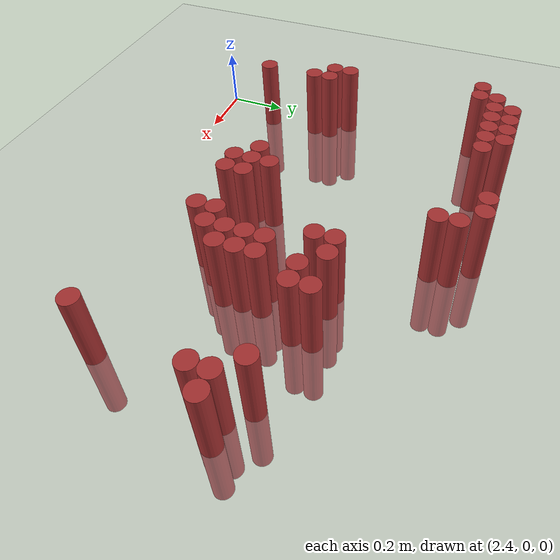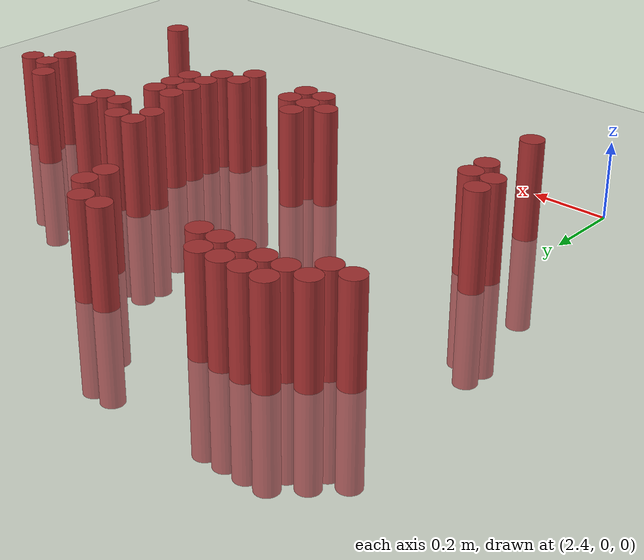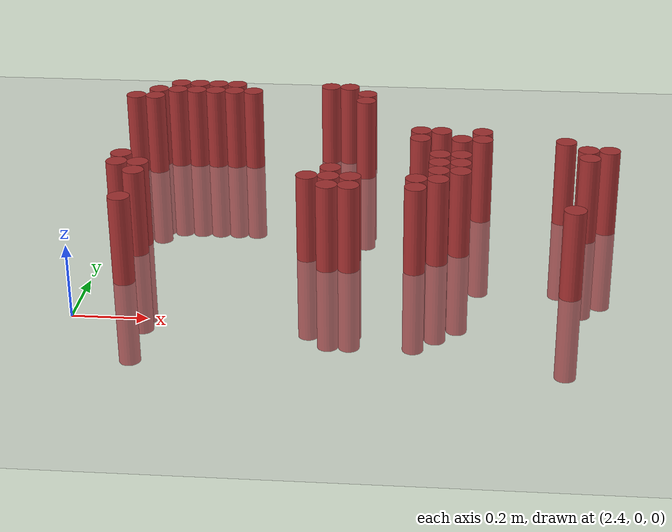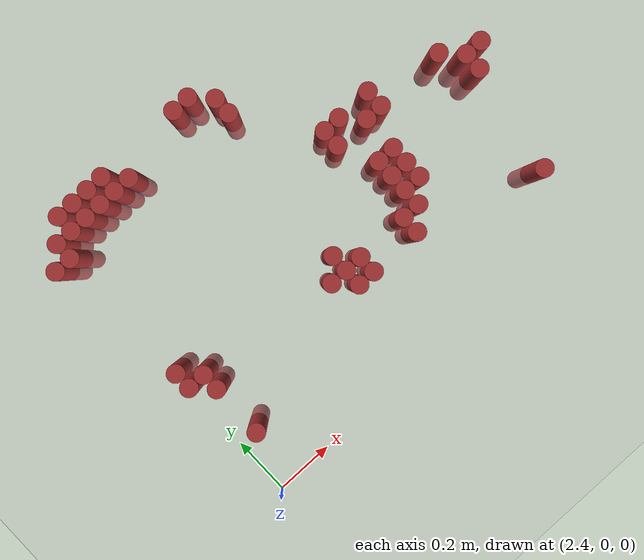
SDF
<sdf version="1.6">
 <world name="default">
  <model name="ground_plane">
   <static>1</static>
   <link name="link">
    <collision name="collision">
     <geometry><plane><normal>0 0 1</normal><size>100 100</size></plane></geometry>
     <surface><friction><ode><mu>100</mu><mu2>50</mu2></ode></friction></surface>
    </collision>
    <visual name="visual">
     <cast_shadows>0</cast_shadows>
     <geometry><plane><normal>0 0 1</normal><size>100 100</size></plane></geometry>
     <material>
      <script><uri>file://media/materials/scripts/gazebo.material</uri><name>Gazebo/Grey</name></script>
     </material>
    </visual>
   </link>
  </model>
  <model name="unit_cylinder_160">
   <static>1</static>
   <pose>2.490000 1.110000 0.000000 0.000000 0.000000 0.000000</pose>
   <link name="link">
    <inertial>
     <mass>1</mass>
     <inertia><ixx>0.145833</ixx><ixy>0</ixy><ixz>0</ixz><iyy>0.145833</iyy><iyz>0</iyz><izz>0.125</izz></inertia>
    </inertial>
    <collision name="collision">
     <geometry><cylinder><radius>0.030000</radius><length>0.5</length></cylinder></geometry>
    </collision>
    <visual name="visual">
     <geometry><cylinder><radius>0.030000</radius><length>0.5</length></cylinder></geometry>
     <material>
      <ambient>0.648000 0.192000 0.192000 1</ambient>
      <diffuse>0.648000 0.192000 0.192000 1</diffuse>
     </material>
     <material>
      <script><name>Gazebo/Grey</name><uri>file://media/materials/scripts/gazebo.material</uri></script>
     </material>
    </visual>
   </link>
  </model>
  <model name="unit_cylinder_161">
   <static>1</static>
   <pose>2.550000 1.110000 0.000000 0.000000 0.000000 0.000000</pose>
   <link name="link">
    <inertial>
     <mass>1</mass>
     <inertia><ixx>0.145833</ixx><ixy>0</ixy><ixz>0</ixz><iyy>0.145833</iyy><iyz>0</iyz><izz>0.125</izz></inertia>
    </inertial>
    <collision name="collision">
     <geometry><cylinder><radius>0.030000</radius><length>0.5</length></cylinder></geometry>
    </collision>
    <visual name="visual">
     <geometry><cylinder><radius>0.030000</radius><length>0.5</length></cylinder></geometry>
     <material>
      <ambient>0.648000 0.192000 0.192000 1</ambient>
      <diffuse>0.648000 0.192000 0.192000 1</diffuse>
     </material>
     <material>
      <script><name>Gazebo/Grey</name><uri>file://media/materials/scripts/gazebo.material</uri></script>
     </material>
    </visual>
   </link>
  </model>
  <model name="unit_cylinder_162">
   <static>1</static>
   <pose>2.610000 1.110000 0.000000 0.000000 0.000000 0.000000</pose>
   <link name="link">
    <inertial>
     <mass>1</mass>
     <inertia><ixx>0.145833</ixx><ixy>0</ixy><ixz>0</ixz><iyy>0.145833</iyy><iyz>0</iyz><izz>0.125</izz></inertia>
    </inertial>
    <collision name="collision">
     <geometry><cylinder><radius>0.030000</radius><length>0.5</length></cylinder></geometry>
    </collision>
    <visual name="visual">
     <geometry><cylinder><radius>0.030000</radius><length>0.5</length></cylinder></geometry>
     <material>
      <ambient>0.648000 0.192000 0.192000 1</ambient>
      <diffuse>0.648000 0.192000 0.192000 1</diffuse>
     </material>
     <material>
      <script><name>Gazebo/Grey</name><uri>file://media/materials/scripts/gazebo.material</uri></script>
     </material>
    </visual>
   </link>
  </model>
  <model name="unit_cylinder_163">
   <static>1</static>
   <pose>2.670000 1.110000 0.000000 0.000000 0.000000 0.000000</pose>
   <link name="link">
    <inertial>
     <mass>1</mass>
     <inertia><ixx>0.145833</ixx><ixy>0</ixy><ixz>0</ixz><iyy>0.145833</iyy><iyz>0</iyz><izz>0.125</izz></inertia>
    </inertial>
    <collision name="collision">
     <geometry><cylinder><radius>0.030000</radius><length>0.5</length></cylinder></geometry>
    </collision>
    <visual name="visual">
     <geometry><cylinder><radius>0.030000</radius><length>0.5</length></cylinder></geometry>
     <material>
      <ambient>0.648000 0.192000 0.192000 1</ambient>
      <diffuse>0.648000 0.192000 0.192000 1</diffuse>
     </material>
     <material>
      <script><name>Gazebo/Grey</name><uri>file://media/materials/scripts/gazebo.material</uri></script>
     </material>
    </visual>
   </link>
  </model>
  <model name="unit_cylinder_164">
   <static>1</static>
   <pose>2.970000 1.110000 0.000000 0.000000 0.000000 0.000000</pose>
   <link name="link">
    <inertial>
     <mass>1</mass>
     <inertia><ixx>0.145833</ixx><ixy>0</ixy><ixz>0</ixz><iyy>0.145833</iyy><iyz>0</iyz><izz>0.125</izz></inertia>
    </inertial>
    <collision name="collision">
     <geometry><cylinder><radius>0.030000</radius><length>0.5</length></cylinder></geometry>
    </collision>
    <visual name="visual">
     <geometry><cylinder><radius>0.030000</radius><length>0.5</length></cylinder></geometry>
     <material>
      <ambient>0.648000 0.192000 0.192000 1</ambient>
      <diffuse>0.648000 0.192000 0.192000 1</diffuse>
     </material>
     <material>
      <script><name>Gazebo/Grey</name><uri>file://media/materials/scripts/gazebo.material</uri></script>
     </material>
    </visual>
   </link>
  </model>
  <model name="unit_cylinder_165">
   <static>1</static>
   <pose>3.030000 1.110000 0.000000 0.000000 0.000000 0.000000</pose>
   <link name="link">
    <inertial>
     <mass>1</mass>
     <inertia><ixx>0.145833</ixx><ixy>0</ixy><ixz>0</ixz><iyy>0.145833</iyy><iyz>0</iyz><izz>0.125</izz></inertia>
    </inertial>
    <collision name="collision">
     <geometry><cylinder><radius>0.030000</radius><length>0.5</length></cylinder></geometry>
    </collision>
    <visual name="visual">
     <geometry><cylinder><radius>0.030000</radius><length>0.5</length></cylinder></geometry>
     <material>
      <ambient>0.648000 0.192000 0.192000 1</ambient>
      <diffuse>0.648000 0.192000 0.192000 1</diffuse>
     </material>
     <material>
      <script><name>Gazebo/Grey</name><uri>file://media/materials/scripts/gazebo.material</uri></script>
     </material>
    </visual>
   </link>
  </model>
  <model name="unit_cylinder_171">
   <static>1</static>
   <pose>2.430000 1.050000 0.000000 0.000000 0.000000 0.000000</pose>
   <link name="link">
    <inertial>
     <mass>1</mass>
     <inertia><ixx>0.145833</ixx><ixy>0</ixy><ixz>0</ixz><iyy>0.145833</iyy><iyz>0</iyz><izz>0.125</izz></inertia>
    </inertial>
    <collision name="collision">
     <geometry><cylinder><radius>0.030000</radius><length>0.5</length></cylinder></geometry>
    </collision>
    <visual name="visual">
     <geometry><cylinder><radius>0.030000</radius><length>0.5</length></cylinder></geometry>
     <material>
      <ambient>0.648000 0.192000 0.192000 1</ambient>
      <diffuse>0.648000 0.192000 0.192000 1</diffuse>
     </material>
     <material>
      <script><name>Gazebo/Grey</name><uri>file://media/materials/scripts/gazebo.material</uri></script>
     </material>
    </visual>
   </link>
  </model>
  <model name="unit_cylinder_172">
   <static>1</static>
   <pose>2.490000 1.050000 0.000000 0.000000 0.000000 0.000000</pose>
   <link name="link">
    <inertial>
     <mass>1</mass>
     <inertia><ixx>0.145833</ixx><ixy>0</ixy><ixz>0</ixz><iyy>0.145833</iyy><iyz>0</iyz><izz>0.125</izz></inertia>
    </inertial>
    <collision name="collision">
     <geometry><cylinder><radius>0.030000</radius><length>0.5</length></cylinder></geometry>
    </collision>
    <visual name="visual">
     <geometry><cylinder><radius>0.030000</radius><length>0.5</length></cylinder></geometry>
     <material>
      <ambient>0.648000 0.192000 0.192000 1</ambient>
      <diffuse>0.648000 0.192000 0.192000 1</diffuse>
     </material>
     <material>
      <script><name>Gazebo/Grey</name><uri>file://media/materials/scripts/gazebo.material</uri></script>
     </material>
    </visual>
   </link>
  </model>
  <model name="unit_cylinder_173">
   <static>1</static>
   <pose>2.550000 1.050000 0.000000 0.000000 0.000000 0.000000</pose>
   <link name="link">
    <inertial>
     <mass>1</mass>
     <inertia><ixx>0.145833</ixx><ixy>0</ixy><ixz>0</ixz><iyy>0.145833</iyy><iyz>0</iyz><izz>0.125</izz></inertia>
    </inertial>
    <collision name="collision">
     <geometry><cylinder><radius>0.030000</radius><length>0.5</length></cylinder></geometry>
    </collision>
    <visual name="visual">
     <geometry><cylinder><radius>0.030000</radius><length>0.5</length></cylinder></geometry>
     <material>
      <ambient>0.648000 0.192000 0.192000 1</ambient>
      <diffuse>0.648000 0.192000 0.192000 1</diffuse>
     </material>
     <material>
      <script><name>Gazebo/Grey</name><uri>file://media/materials/scripts/gazebo.material</uri></script>
     </material>
    </visual>
   </link>
  </model>
  <model name="unit_cylinder_174">
   <static>1</static>
   <pose>2.610000 1.050000 0.000000 0.000000 0.000000 0.000000</pose>
   <link name="link">
    <inertial>
     <mass>1</mass>
     <inertia><ixx>0.145833</ixx><ixy>0</ixy><ixz>0</ixz><iyy>0.145833</iyy><iyz>0</iyz><izz>0.125</izz></inertia>
    </inertial>
    <collision name="collision">
     <geometry><cylinder><radius>0.030000</radius><length>0.5</length></cylinder></geometry>
    </collision>
    <visual name="visual">
     <geometry><cylinder><radius>0.030000</radius><length>0.5</length></cylinder></geometry>
     <material>
      <ambient>0.648000 0.192000 0.192000 1</ambient>
      <diffuse>0.648000 0.192000 0.192000 1</diffuse>
     </material>
     <material>
      <script><name>Gazebo/Grey</name><uri>file://media/materials/scripts/gazebo.material</uri></script>
     </material>
    </visual>
   </link>
  </model>
  <model name="unit_cylinder_175">
   <static>1</static>
   <pose>2.670000 1.050000 0.000000 0.000000 0.000000 0.000000</pose>
   <link name="link">
    <inertial>
     <mass>1</mass>
     <inertia><ixx>0.145833</ixx><ixy>0</ixy><ixz>0</ixz><iyy>0.145833</iyy><iyz>0</iyz><izz>0.125</izz></inertia>
    </inertial>
    <collision name="collision">
     <geometry><cylinder><radius>0.030000</radius><length>0.5</length></cylinder></geometry>
    </collision>
    <visual name="visual">
     <geometry><cylinder><radius>0.030000</radius><length>0.5</length></cylinder></geometry>
     <material>
      <ambient>0.648000 0.192000 0.192000 1</ambient>
      <diffuse>0.648000 0.192000 0.192000 1</diffuse>
     </material>
     <material>
      <script><name>Gazebo/Grey</name><uri>file://media/materials/scripts/gazebo.material</uri></script>
     </material>
    </visual>
   </link>
  </model>
  <model name="unit_cylinder_176">
   <static>1</static>
   <pose>2.730000 1.050000 0.000000 0.000000 0.000000 0.000000</pose>
   <link name="link">
    <inertial>
     <mass>1</mass>
     <inertia><ixx>0.145833</ixx><ixy>0</ixy><ixz>0</ixz><iyy>0.145833</iyy><iyz>0</iyz><izz>0.125</izz></inertia>
    </inertial>
    <collision name="collision">
     <geometry><cylinder><radius>0.030000</radius><length>0.5</length></cylinder></geometry>
    </collision>
    <visual name="visual">
     <geometry><cylinder><radius>0.030000</radius><length>0.5</length></cylinder></geometry>
     <material>
      <ambient>0.648000 0.192000 0.192000 1</ambient>
      <diffuse>0.648000 0.192000 0.192000 1</diffuse>
     </material>
     <material>
      <script><name>Gazebo/Grey</name><uri>file://media/materials/scripts/gazebo.material</uri></script>
     </material>
    </visual>
   </link>
  </model>
  <model name="unit_cylinder_177">
   <static>1</static>
   <pose>3.090000 1.050000 0.000000 0.000000 0.000000 0.000000</pose>
   <link name="link">
    <inertial>
     <mass>1</mass>
     <inertia><ixx>0.145833</ixx><ixy>0</ixy><ixz>0</ixz><iyy>0.145833</iyy><iyz>0</iyz><izz>0.125</izz></inertia>
    </inertial>
    <collision name="collision">
     <geometry><cylinder><radius>0.030000</radius><length>0.5</length></cylinder></geometry>
    </collision>
    <visual name="visual">
     <geometry><cylinder><radius>0.030000</radius><length>0.5</length></cylinder></geometry>
     <material>
      <ambient>0.648000 0.192000 0.192000 1</ambient>
      <diffuse>0.648000 0.192000 0.192000 1</diffuse>
     </material>
     <material>
      <script><name>Gazebo/Grey</name><uri>file://media/materials/scripts/gazebo.material</uri></script>
     </material>
    </visual>
   </link>
  </model>
  <model name="unit_cylinder_181">
   <static>1</static>
   <pose>2.370000 0.990000 0.000000 0.000000 0.000000 0.000000</pose>
   <link name="link">
    <inertial>
     <mass>1</mass>
     <inertia><ixx>0.145833</ixx><ixy>0</ixy><ixz>0</ixz><iyy>0.145833</iyy><iyz>0</iyz><izz>0.125</izz></inertia>
    </inertial>
    <collision name="collision">
     <geometry><cylinder><radius>0.030000</radius><length>0.5</length></cylinder></geometry>
    </collision>
    <visual name="visual">
     <geometry><cylinder><radius>0.030000</radius><length>0.5</length></cylinder></geometry>
     <material>
      <ambient>0.648000 0.192000 0.192000 1</ambient>
      <diffuse>0.648000 0.192000 0.192000 1</diffuse>
     </material>
     <material>
      <script><name>Gazebo/Grey</name><uri>file://media/materials/scripts/gazebo.material</uri></script>
     </material>
    </visual>
   </link>
  </model>
  <model name="unit_cylinder_182">
   <static>1</static>
   <pose>2.430000 0.990000 0.000000 0.000000 0.000000 0.000000</pose>
   <link name="link">
    <inertial>
     <mass>1</mass>
     <inertia><ixx>0.145833</ixx><ixy>0</ixy><ixz>0</ixz><iyy>0.145833</iyy><iyz>0</iyz><izz>0.125</izz></inertia>
    </inertial>
    <collision name="collision">
     <geometry><cylinder><radius>0.030000</radius><length>0.5</length></cylinder></geometry>
    </collision>
    <visual name="visual">
     <geometry><cylinder><radius>0.030000</radius><length>0.5</length></cylinder></geometry>
     <material>
      <ambient>0.648000 0.192000 0.192000 1</ambient>
      <diffuse>0.648000 0.192000 0.192000 1</diffuse>
     </material>
     <material>
      <script><name>Gazebo/Grey</name><uri>file://media/materials/scripts/gazebo.material</uri></script>
     </material>
    </visual>
   </link>
  </model>
  <model name="unit_cylinder_183">
   <static>1</static>
   <pose>3.090000 0.990000 0.000000 0.000000 0.000000 0.000000</pose>
   <link name="link">
    <inertial>
     <mass>1</mass>
     <inertia><ixx>0.145833</ixx><ixy>0</ixy><ixz>0</ixz><iyy>0.145833</iyy><iyz>0</iyz><izz>0.125</izz></inertia>
    </inertial>
    <collision name="collision">
     <geometry><cylinder><radius>0.030000</radius><length>0.5</length></cylinder></geometry>
    </collision>
    <visual name="visual">
     <geometry><cylinder><radius>0.030000</radius><length>0.5</length></cylinder></geometry>
     <material>
      <ambient>0.648000 0.192000 0.192000 1</ambient>
      <diffuse>0.648000 0.192000 0.192000 1</diffuse>
     </material>
     <material>
      <script><name>Gazebo/Grey</name><uri>file://media/materials/scripts/gazebo.material</uri></script>
     </material>
    </visual>
   </link>
  </model>
  <model name="unit_cylinder_189">
   <static>1</static>
   <pose>3.270000 0.750000 0.000000 0.000000 0.000000 0.000000</pose>
   <link name="link">
    <inertial>
     <mass>1</mass>
     <inertia><ixx>0.145833</ixx><ixy>0</ixy><ixz>0</ixz><iyy>0.145833</iyy><iyz>0</iyz><izz>0.125</izz></inertia>
    </inertial>
    <collision name="collision">
     <geometry><cylinder><radius>0.030000</radius><length>0.5</length></cylinder></geometry>
    </collision>
    <visual name="visual">
     <geometry><cylinder><radius>0.030000</radius><length>0.5</length></cylinder></geometry>
     <material>
      <ambient>0.648000 0.192000 0.192000 1</ambient>
      <diffuse>0.648000 0.192000 0.192000 1</diffuse>
     </material>
     <material>
      <script><name>Gazebo/Grey</name><uri>file://media/materials/scripts/gazebo.material</uri></script>
     </material>
    </visual>
   </link>
  </model>
  <model name="unit_cylinder_190">
   <static>1</static>
   <pose>3.330000 0.750000 0.000000 0.000000 0.000000 0.000000</pose>
   <link name="link">
    <inertial>
     <mass>1</mass>
     <inertia><ixx>0.145833</ixx><ixy>0</ixy><ixz>0</ixz><iyy>0.145833</iyy><iyz>0</iyz><izz>0.125</izz></inertia>
    </inertial>
    <collision name="collision">
     <geometry><cylinder><radius>0.030000</radius><length>0.5</length></cylinder></geometry>
    </collision>
    <visual name="visual">
     <geometry><cylinder><radius>0.030000</radius><length>0.5</length></cylinder></geometry>
     <material>
      <ambient>0.648000 0.192000 0.192000 1</ambient>
      <diffuse>0.648000 0.192000 0.192000 1</diffuse>
     </material>
     <material>
      <script><name>Gazebo/Grey</name><uri>file://media/materials/scripts/gazebo.material</uri></script>
     </material>
    </visual>
   </link>
  </model>
  <model name="unit_cylinder_191">
   <static>1</static>
   <pose>3.450000 0.750000 0.000000 0.000000 0.000000 0.000000</pose>
   <link name="link">
    <inertial>
     <mass>1</mass>
     <inertia><ixx>0.145833</ixx><ixy>0</ixy><ixz>0</ixz><iyy>0.145833</iyy><iyz>0</iyz><izz>0.125</izz></inertia>
    </inertial>
    <collision name="collision">
     <geometry><cylinder><radius>0.030000</radius><length>0.5</length></cylinder></geometry>
    </collision>
    <visual name="visual">
     <geometry><cylinder><radius>0.030000</radius><length>0.5</length></cylinder></geometry>
     <material>
      <ambient>0.648000 0.192000 0.192000 1</ambient>
      <diffuse>0.648000 0.192000 0.192000 1</diffuse>
     </material>
     <material>
      <script><name>Gazebo/Grey</name><uri>file://media/materials/scripts/gazebo.material</uri></script>
     </material>
    </visual>
   </link>
  </model>
  <model name="unit_cylinder_192">
   <static>1</static>
   <pose>3.270000 0.690000 0.000000 0.000000 0.000000 0.000000</pose>
   <link name="link">
    <inertial>
     <mass>1</mass>
     <inertia><ixx>0.145833</ixx><ixy>0</ixy><ixz>0</ixz><iyy>0.145833</iyy><iyz>0</iyz><izz>0.125</izz></inertia>
    </inertial>
    <collision name="collision">
     <geometry><cylinder><radius>0.030000</radius><length>0.5</length></cylinder></geometry>
    </collision>
    <visual name="visual">
     <geometry><cylinder><radius>0.030000</radius><length>0.5</length></cylinder></geometry>
     <material>
      <ambient>0.648000 0.192000 0.192000 1</ambient>
      <diffuse>0.648000 0.192000 0.192000 1</diffuse>
     </material>
     <material>
      <script><name>Gazebo/Grey</name><uri>file://media/materials/scripts/gazebo.material</uri></script>
     </material>
    </visual>
   </link>
  </model>
  <model name="unit_cylinder_193">
   <static>1</static>
   <pose>3.390000 0.690000 0.000000 0.000000 0.000000 0.000000</pose>
   <link name="link">
    <inertial>
     <mass>1</mass>
     <inertia><ixx>0.145833</ixx><ixy>0</ixy><ixz>0</ixz><iyy>0.145833</iyy><iyz>0</iyz><izz>0.125</izz></inertia>
    </inertial>
    <collision name="collision">
     <geometry><cylinder><radius>0.030000</radius><length>0.5</length></cylinder></geometry>
    </collision>
    <visual name="visual">
     <geometry><cylinder><radius>0.030000</radius><length>0.5</length></cylinder></geometry>
     <material>
      <ambient>0.648000 0.192000 0.192000 1</ambient>
      <diffuse>0.648000 0.192000 0.192000 1</diffuse>
     </material>
     <material>
      <script><name>Gazebo/Grey</name><uri>file://media/materials/scripts/gazebo.material</uri></script>
     </material>
    </visual>
   </link>
  </model>
  <model name="unit_cylinder_194">
   <static>1</static>
   <pose>3.450000 0.690000 0.000000 0.000000 0.000000 0.000000</pose>
   <link name="link">
    <inertial>
     <mass>1</mass>
     <inertia><ixx>0.145833</ixx><ixy>0</ixy><ixz>0</ixz><iyy>0.145833</iyy><iyz>0</iyz><izz>0.125</izz></inertia>
    </inertial>
    <collision name="collision">
     <geometry><cylinder><radius>0.030000</radius><length>0.5</length></cylinder></geometry>
    </collision>
    <visual name="visual">
     <geometry><cylinder><radius>0.030000</radius><length>0.5</length></cylinder></geometry>
     <material>
      <ambient>0.648000 0.192000 0.192000 1</ambient>
      <diffuse>0.648000 0.192000 0.192000 1</diffuse>
     </material>
     <material>
      <script><name>Gazebo/Grey</name><uri>file://media/materials/scripts/gazebo.material</uri></script>
     </material>
    </visual>
   </link>
  </model>
  <model name="unit_cylinder_195">
   <static>1</static>
   <pose>3.690000 0.690000 0.000000 0.000000 0.000000 0.000000</pose>
   <link name="link">
    <inertial>
     <mass>1</mass>
     <inertia><ixx>0.145833</ixx><ixy>0</ixy><ixz>0</ixz><iyy>0.145833</iyy><iyz>0</iyz><izz>0.125</izz></inertia>
    </inertial>
    <collision name="collision">
     <geometry><cylinder><radius>0.030000</radius><length>0.5</length></cylinder></geometry>
    </collision>
    <visual name="visual">
     <geometry><cylinder><radius>0.030000</radius><length>0.5</length></cylinder></geometry>
     <material>
      <ambient>0.648000 0.192000 0.192000 1</ambient>
      <diffuse>0.648000 0.192000 0.192000 1</diffuse>
     </material>
     <material>
      <script><name>Gazebo/Grey</name><uri>file://media/materials/scripts/gazebo.material</uri></script>
     </material>
    </visual>
   </link>
  </model>
  <model name="unit_cylinder_196">
   <static>1</static>
   <pose>3.750000 0.630000 0.000000 0.000000 0.000000 0.000000</pose>
   <link name="link">
    <inertial>
     <mass>1</mass>
     <inertia><ixx>0.145833</ixx><ixy>0</ixy><ixz>0</ixz><iyy>0.145833</iyy><iyz>0</iyz><izz>0.125</izz></inertia>
    </inertial>
    <collision name="collision">
     <geometry><cylinder><radius>0.030000</radius><length>0.5</length></cylinder></geometry>
    </collision>
    <visual name="visual">
     <geometry><cylinder><radius>0.030000</radius><length>0.5</length></cylinder></geometry>
     <material>
      <ambient>0.648000 0.192000 0.192000 1</ambient>
      <diffuse>0.648000 0.192000 0.192000 1</diffuse>
     </material>
     <material>
      <script><name>Gazebo/Grey</name><uri>file://media/materials/scripts/gazebo.material</uri></script>
     </material>
    </visual>
   </link>
  </model>
  <model name="unit_cylinder_197">
   <static>1</static>
   <pose>3.810000 0.630000 0.000000 0.000000 0.000000 0.000000</pose>
   <link name="link">
    <inertial>
     <mass>1</mass>
     <inertia><ixx>0.145833</ixx><ixy>0</ixy><ixz>0</ixz><iyy>0.145833</iyy><iyz>0</iyz><izz>0.125</izz></inertia>
    </inertial>
    <collision name="collision">
     <geometry><cylinder><radius>0.030000</radius><length>0.5</length></cylinder></geometry>
    </collision>
    <visual name="visual">
     <geometry><cylinder><radius>0.030000</radius><length>0.5</length></cylinder></geometry>
     <material>
      <ambient>0.648000 0.192000 0.192000 1</ambient>
      <diffuse>0.648000 0.192000 0.192000 1</diffuse>
     </material>
     <material>
      <script><name>Gazebo/Grey</name><uri>file://media/materials/scripts/gazebo.material</uri></script>
     </material>
    </visual>
   </link>
  </model>
  <model name="unit_cylinder_199">
   <static>1</static>
   <pose>3.330000 0.570000 0.000000 0.000000 0.000000 0.000000</pose>
   <link name="link">
    <inertial>
     <mass>1</mass>
     <inertia><ixx>0.145833</ixx><ixy>0</ixy><ixz>0</ixz><iyy>0.145833</iyy><iyz>0</iyz><izz>0.125</izz></inertia>
    </inertial>
    <collision name="collision">
     <geometry><cylinder><radius>0.030000</radius><length>0.5</length></cylinder></geometry>
    </collision>
    <visual name="visual">
     <geometry><cylinder><radius>0.030000</radius><length>0.5</length></cylinder></geometry>
     <material>
      <ambient>0.648000 0.192000 0.192000 1</ambient>
      <diffuse>0.648000 0.192000 0.192000 1</diffuse>
     </material>
     <material>
      <script><name>Gazebo/Grey</name><uri>file://media/materials/scripts/gazebo.material</uri></script>
     </material>
    </visual>
   </link>
  </model>
  <model name="unit_cylinder_200">
   <static>1</static>
   <pose>3.390000 0.570000 0.000000 0.000000 0.000000 0.000000</pose>
   <link name="link">
    <inertial>
     <mass>1</mass>
     <inertia><ixx>0.145833</ixx><ixy>0</ixy><ixz>0</ixz><iyy>0.145833</iyy><iyz>0</iyz><izz>0.125</izz></inertia>
    </inertial>
    <collision name="collision">
     <geometry><cylinder><radius>0.030000</radius><length>0.5</length></cylinder></geometry>
    </collision>
    <visual name="visual">
     <geometry><cylinder><radius>0.030000</radius><length>0.5</length></cylinder></geometry>
     <material>
      <ambient>0.648000 0.192000 0.192000 1</ambient>
      <diffuse>0.648000 0.192000 0.192000 1</diffuse>
     </material>
     <material>
      <script><name>Gazebo/Grey</name><uri>file://media/materials/scripts/gazebo.material</uri></script>
     </material>
    </visual>
   </link>
  </model>
  <model name="unit_cylinder_201">
   <static>1</static>
   <pose>3.750000 0.570000 0.000000 0.000000 0.000000 0.000000</pose>
   <link name="link">
    <inertial>
     <mass>1</mass>
     <inertia><ixx>0.145833</ixx><ixy>0</ixy><ixz>0</ixz><iyy>0.145833</iyy><iyz>0</iyz><izz>0.125</izz></inertia>
    </inertial>
    <collision name="collision">
     <geometry><cylinder><radius>0.030000</radius><length>0.5</length></cylinder></geometry>
    </collision>
    <visual name="visual">
     <geometry><cylinder><radius>0.030000</radius><length>0.5</length></cylinder></geometry>
     <material>
      <ambient>0.648000 0.192000 0.192000 1</ambient>
      <diffuse>0.648000 0.192000 0.192000 1</diffuse>
     </material>
     <material>
      <script><name>Gazebo/Grey</name><uri>file://media/materials/scripts/gazebo.material</uri></script>
     </material>
    </visual>
   </link>
  </model>
  <model name="unit_cylinder_205">
   <static>1</static>
   <pose>2.430000 0.510000 0.000000 0.000000 0.000000 0.000000</pose>
   <link name="link">
    <inertial>
     <mass>1</mass>
     <inertia><ixx>0.145833</ixx><ixy>0</ixy><ixz>0</ixz><iyy>0.145833</iyy><iyz>0</iyz><izz>0.125</izz></inertia>
    </inertial>
    <collision name="collision">
     <geometry><cylinder><radius>0.030000</radius><length>0.5</length></cylinder></geometry>
    </collision>
    <visual name="visual">
     <geometry><cylinder><radius>0.030000</radius><length>0.5</length></cylinder></geometry>
     <material>
      <ambient>0.648000 0.192000 0.192000 1</ambient>
      <diffuse>0.648000 0.192000 0.192000 1</diffuse>
     </material>
     <material>
      <script><name>Gazebo/Grey</name><uri>file://media/materials/scripts/gazebo.material</uri></script>
     </material>
    </visual>
   </link>
  </model>
  <model name="unit_cylinder_206">
   <static>1</static>
   <pose>3.330000 0.510000 0.000000 0.000000 0.000000 0.000000</pose>
   <link name="link">
    <inertial>
     <mass>1</mass>
     <inertia><ixx>0.145833</ixx><ixy>0</ixy><ixz>0</ixz><iyy>0.145833</iyy><iyz>0</iyz><izz>0.125</izz></inertia>
    </inertial>
    <collision name="collision">
     <geometry><cylinder><radius>0.030000</radius><length>0.5</length></cylinder></geometry>
    </collision>
    <visual name="visual">
     <geometry><cylinder><radius>0.030000</radius><length>0.5</length></cylinder></geometry>
     <material>
      <ambient>0.648000 0.192000 0.192000 1</ambient>
      <diffuse>0.648000 0.192000 0.192000 1</diffuse>
     </material>
     <material>
      <script><name>Gazebo/Grey</name><uri>file://media/materials/scripts/gazebo.material</uri></script>
     </material>
    </visual>
   </link>
  </model>
  <model name="unit_cylinder_207">
   <static>1</static>
   <pose>3.390000 0.510000 0.000000 0.000000 0.000000 0.000000</pose>
   <link name="link">
    <inertial>
     <mass>1</mass>
     <inertia><ixx>0.145833</ixx><ixy>0</ixy><ixz>0</ixz><iyy>0.145833</iyy><iyz>0</iyz><izz>0.125</izz></inertia>
    </inertial>
    <collision name="collision">
     <geometry><cylinder><radius>0.030000</radius><length>0.5</length></cylinder></geometry>
    </collision>
    <visual name="visual">
     <geometry><cylinder><radius>0.030000</radius><length>0.5</length></cylinder></geometry>
     <material>
      <ambient>0.648000 0.192000 0.192000 1</ambient>
      <diffuse>0.648000 0.192000 0.192000 1</diffuse>
     </material>
     <material>
      <script><name>Gazebo/Grey</name><uri>file://media/materials/scripts/gazebo.material</uri></script>
     </material>
    </visual>
   </link>
  </model>
  <model name="unit_cylinder_211">
   <static>1</static>
   <pose>2.430000 0.450000 0.000000 0.000000 0.000000 0.000000</pose>
   <link name="link">
    <inertial>
     <mass>1</mass>
     <inertia><ixx>0.145833</ixx><ixy>0</ixy><ixz>0</ixz><iyy>0.145833</iyy><iyz>0</iyz><izz>0.125</izz></inertia>
    </inertial>
    <collision name="collision">
     <geometry><cylinder><radius>0.030000</radius><length>0.5</length></cylinder></geometry>
    </collision>
    <visual name="visual">
     <geometry><cylinder><radius>0.030000</radius><length>0.5</length></cylinder></geometry>
     <material>
      <ambient>0.648000 0.192000 0.192000 1</ambient>
      <diffuse>0.648000 0.192000 0.192000 1</diffuse>
     </material>
     <material>
      <script><name>Gazebo/Grey</name><uri>file://media/materials/scripts/gazebo.material</uri></script>
     </material>
    </visual>
   </link>
  </model>
  <model name="unit_cylinder_212">
   <static>1</static>
   <pose>2.490000 0.450000 0.000000 0.000000 0.000000 0.000000</pose>
   <link name="link">
    <inertial>
     <mass>1</mass>
     <inertia><ixx>0.145833</ixx><ixy>0</ixy><ixz>0</ixz><iyy>0.145833</iyy><iyz>0</iyz><izz>0.125</izz></inertia>
    </inertial>
    <collision name="collision">
     <geometry><cylinder><radius>0.030000</radius><length>0.5</length></cylinder></geometry>
    </collision>
    <visual name="visual">
     <geometry><cylinder><radius>0.030000</radius><length>0.5</length></cylinder></geometry>
     <material>
      <ambient>0.648000 0.192000 0.192000 1</ambient>
      <diffuse>0.648000 0.192000 0.192000 1</diffuse>
     </material>
     <material>
      <script><name>Gazebo/Grey</name><uri>file://media/materials/scripts/gazebo.material</uri></script>
     </material>
    </visual>
   </link>
  </model>
  <model name="unit_cylinder_213">
   <static>1</static>
   <pose>3.030000 0.450000 0.000000 0.000000 0.000000 0.000000</pose>
   <link name="link">
    <inertial>
     <mass>1</mass>
     <inertia><ixx>0.145833</ixx><ixy>0</ixy><ixz>0</ixz><iyy>0.145833</iyy><iyz>0</iyz><izz>0.125</izz></inertia>
    </inertial>
    <collision name="collision">
     <geometry><cylinder><radius>0.030000</radius><length>0.5</length></cylinder></geometry>
    </collision>
    <visual name="visual">
     <geometry><cylinder><radius>0.030000</radius><length>0.5</length></cylinder></geometry>
     <material>
      <ambient>0.648000 0.192000 0.192000 1</ambient>
      <diffuse>0.648000 0.192000 0.192000 1</diffuse>
     </material>
     <material>
      <script><name>Gazebo/Grey</name><uri>file://media/materials/scripts/gazebo.material</uri></script>
     </material>
    </visual>
   </link>
  </model>
  <model name="unit_cylinder_214">
   <static>1</static>
   <pose>3.330000 0.450000 0.000000 0.000000 0.000000 0.000000</pose>
   <link name="link">
    <inertial>
     <mass>1</mass>
     <inertia><ixx>0.145833</ixx><ixy>0</ixy><ixz>0</ixz><iyy>0.145833</iyy><iyz>0</iyz><izz>0.125</izz></inertia>
    </inertial>
    <collision name="collision">
     <geometry><cylinder><radius>0.030000</radius><length>0.5</length></cylinder></geometry>
    </collision>
    <visual name="visual">
     <geometry><cylinder><radius>0.030000</radius><length>0.5</length></cylinder></geometry>
     <material>
      <ambient>0.648000 0.192000 0.192000 1</ambient>
      <diffuse>0.648000 0.192000 0.192000 1</diffuse>
     </material>
     <material>
      <script><name>Gazebo/Grey</name><uri>file://media/materials/scripts/gazebo.material</uri></script>
     </material>
    </visual>
   </link>
  </model>
  <model name="unit_cylinder_215">
   <static>1</static>
   <pose>3.390000 0.450000 0.000000 0.000000 0.000000 0.000000</pose>
   <link name="link">
    <inertial>
     <mass>1</mass>
     <inertia><ixx>0.145833</ixx><ixy>0</ixy><ixz>0</ixz><iyy>0.145833</iyy><iyz>0</iyz><izz>0.125</izz></inertia>
    </inertial>
    <collision name="collision">
     <geometry><cylinder><radius>0.030000</radius><length>0.5</length></cylinder></geometry>
    </collision>
    <visual name="visual">
     <geometry><cylinder><radius>0.030000</radius><length>0.5</length></cylinder></geometry>
     <material>
      <ambient>0.648000 0.192000 0.192000 1</ambient>
      <diffuse>0.648000 0.192000 0.192000 1</diffuse>
     </material>
     <material>
      <script><name>Gazebo/Grey</name><uri>file://media/materials/scripts/gazebo.material</uri></script>
     </material>
    </visual>
   </link>
  </model>
  <model name="unit_cylinder_216">
   <static>1</static>
   <pose>2.490000 0.390000 0.000000 0.000000 0.000000 0.000000</pose>
   <link name="link">
    <inertial>
     <mass>1</mass>
     <inertia><ixx>0.145833</ixx><ixy>0</ixy><ixz>0</ixz><iyy>0.145833</iyy><iyz>0</iyz><izz>0.125</izz></inertia>
    </inertial>
    <collision name="collision">
     <geometry><cylinder><radius>0.030000</radius><length>0.5</length></cylinder></geometry>
    </collision>
    <visual name="visual">
     <geometry><cylinder><radius>0.030000</radius><length>0.5</length></cylinder></geometry>
     <material>
      <ambient>0.648000 0.192000 0.192000 1</ambient>
      <diffuse>0.648000 0.192000 0.192000 1</diffuse>
     </material>
     <material>
      <script><name>Gazebo/Grey</name><uri>file://media/materials/scripts/gazebo.material</uri></script>
     </material>
    </visual>
   </link>
  </model>
  <model name="unit_cylinder_217">
   <static>1</static>
   <pose>2.970000 0.390000 0.000000 0.000000 0.000000 0.000000</pose>
   <link name="link">
    <inertial>
     <mass>1</mass>
     <inertia><ixx>0.145833</ixx><ixy>0</ixy><ixz>0</ixz><iyy>0.145833</iyy><iyz>0</iyz><izz>0.125</izz></inertia>
    </inertial>
    <collision name="collision">
     <geometry><cylinder><radius>0.030000</radius><length>0.5</length></cylinder></geometry>
    </collision>
    <visual name="visual">
     <geometry><cylinder><radius>0.030000</radius><length>0.5</length></cylinder></geometry>
     <material>
      <ambient>0.648000 0.192000 0.192000 1</ambient>
      <diffuse>0.648000 0.192000 0.192000 1</diffuse>
     </material>
     <material>
      <script><name>Gazebo/Grey</name><uri>file://media/materials/scripts/gazebo.material</uri></script>
     </material>
    </visual>
   </link>
  </model>
  <model name="unit_cylinder_218">
   <static>1</static>
   <pose>3.030000 0.390000 0.000000 0.000000 0.000000 0.000000</pose>
   <link name="link">
    <inertial>
     <mass>1</mass>
     <inertia><ixx>0.145833</ixx><ixy>0</ixy><ixz>0</ixz><iyy>0.145833</iyy><iyz>0</iyz><izz>0.125</izz></inertia>
    </inertial>
    <collision name="collision">
     <geometry><cylinder><radius>0.030000</radius><length>0.5</length></cylinder></geometry>
    </collision>
    <visual name="visual">
     <geometry><cylinder><radius>0.030000</radius><length>0.5</length></cylinder></geometry>
     <material>
      <ambient>0.648000 0.192000 0.192000 1</ambient>
      <diffuse>0.648000 0.192000 0.192000 1</diffuse>
     </material>
     <material>
      <script><name>Gazebo/Grey</name><uri>file://media/materials/scripts/gazebo.material</uri></script>
     </material>
    </visual>
   </link>
  </model>
  <model name="unit_cylinder_219">
   <static>1</static>
   <pose>3.090000 0.390000 0.000000 0.000000 0.000000 0.000000</pose>
   <link name="link">
    <inertial>
     <mass>1</mass>
     <inertia><ixx>0.145833</ixx><ixy>0</ixy><ixz>0</ixz><iyy>0.145833</iyy><iyz>0</iyz><izz>0.125</izz></inertia>
    </inertial>
    <collision name="collision">
     <geometry><cylinder><radius>0.030000</radius><length>0.5</length></cylinder></geometry>
    </collision>
    <visual name="visual">
     <geometry><cylinder><radius>0.030000</radius><length>0.5</length></cylinder></geometry>
     <material>
      <ambient>0.648000 0.192000 0.192000 1</ambient>
      <diffuse>0.648000 0.192000 0.192000 1</diffuse>
     </material>
     <material>
      <script><name>Gazebo/Grey</name><uri>file://media/materials/scripts/gazebo.material</uri></script>
     </material>
    </visual>
   </link>
  </model>
  <model name="unit_cylinder_220">
   <static>1</static>
   <pose>3.270000 0.390000 0.000000 0.000000 0.000000 0.000000</pose>
   <link name="link">
    <inertial>
     <mass>1</mass>
     <inertia><ixx>0.145833</ixx><ixy>0</ixy><ixz>0</ixz><iyy>0.145833</iyy><iyz>0</iyz><izz>0.125</izz></inertia>
    </inertial>
    <collision name="collision">
     <geometry><cylinder><radius>0.030000</radius><length>0.5</length></cylinder></geometry>
    </collision>
    <visual name="visual">
     <geometry><cylinder><radius>0.030000</radius><length>0.5</length></cylinder></geometry>
     <material>
      <ambient>0.648000 0.192000 0.192000 1</ambient>
      <diffuse>0.648000 0.192000 0.192000 1</diffuse>
     </material>
     <material>
      <script><name>Gazebo/Grey</name><uri>file://media/materials/scripts/gazebo.material</uri></script>
     </material>
    </visual>
   </link>
  </model>
  <model name="unit_cylinder_221">
   <static>1</static>
   <pose>3.330000 0.390000 0.000000 0.000000 0.000000 0.000000</pose>
   <link name="link">
    <inertial>
     <mass>1</mass>
     <inertia><ixx>0.145833</ixx><ixy>0</ixy><ixz>0</ixz><iyy>0.145833</iyy><iyz>0</iyz><izz>0.125</izz></inertia>
    </inertial>
    <collision name="collision">
     <geometry><cylinder><radius>0.030000</radius><length>0.5</length></cylinder></geometry>
    </collision>
    <visual name="visual">
     <geometry><cylinder><radius>0.030000</radius><length>0.5</length></cylinder></geometry>
     <material>
      <ambient>0.648000 0.192000 0.192000 1</ambient>
      <diffuse>0.648000 0.192000 0.192000 1</diffuse>
     </material>
     <material>
      <script><name>Gazebo/Grey</name><uri>file://media/materials/scripts/gazebo.material</uri></script>
     </material>
    </visual>
   </link>
  </model>
  <model name="unit_cylinder_222">
   <static>1</static>
   <pose>3.030000 0.330000 0.000000 0.000000 0.000000 0.000000</pose>
   <link name="link">
    <inertial>
     <mass>1</mass>
     <inertia><ixx>0.145833</ixx><ixy>0</ixy><ixz>0</ixz><iyy>0.145833</iyy><iyz>0</iyz><izz>0.125</izz></inertia>
    </inertial>
    <collision name="collision">
     <geometry><cylinder><radius>0.030000</radius><length>0.5</length></cylinder></geometry>
    </collision>
    <visual name="visual">
     <geometry><cylinder><radius>0.030000</radius><length>0.5</length></cylinder></geometry>
     <material>
      <ambient>0.648000 0.192000 0.192000 1</ambient>
      <diffuse>0.648000 0.192000 0.192000 1</diffuse>
     </material>
     <material>
      <script><name>Gazebo/Grey</name><uri>file://media/materials/scripts/gazebo.material</uri></script>
     </material>
    </visual>
   </link>
  </model>
  <model name="unit_cylinder_223">
   <static>1</static>
   <pose>3.090000 0.330000 0.000000 0.000000 0.000000 0.000000</pose>
   <link name="link">
    <inertial>
     <mass>1</mass>
     <inertia><ixx>0.145833</ixx><ixy>0</ixy><ixz>0</ixz><iyy>0.145833</iyy><iyz>0</iyz><izz>0.125</izz></inertia>
    </inertial>
    <collision name="collision">
     <geometry><cylinder><radius>0.030000</radius><length>0.5</length></cylinder></geometry>
    </collision>
    <visual name="visual">
     <geometry><cylinder><radius>0.030000</radius><length>0.5</length></cylinder></geometry>
     <material>
      <ambient>0.648000 0.192000 0.192000 1</ambient>
      <diffuse>0.648000 0.192000 0.192000 1</diffuse>
     </material>
     <material>
      <script><name>Gazebo/Grey</name><uri>file://media/materials/scripts/gazebo.material</uri></script>
     </material>
    </visual>
   </link>
  </model>
  <model name="unit_cylinder_224">
   <static>1</static>
   <pose>3.270000 0.330000 0.000000 0.000000 0.000000 0.000000</pose>
   <link name="link">
    <inertial>
     <mass>1</mass>
     <inertia><ixx>0.145833</ixx><ixy>0</ixy><ixz>0</ixz><iyy>0.145833</iyy><iyz>0</iyz><izz>0.125</izz></inertia>
    </inertial>
    <collision name="collision">
     <geometry><cylinder><radius>0.030000</radius><length>0.5</length></cylinder></geometry>
    </collision>
    <visual name="visual">
     <geometry><cylinder><radius>0.030000</radius><length>0.5</length></cylinder></geometry>
     <material>
      <ambient>0.648000 0.192000 0.192000 1</ambient>
      <diffuse>0.648000 0.192000 0.192000 1</diffuse>
     </material>
     <material>
      <script><name>Gazebo/Grey</name><uri>file://media/materials/scripts/gazebo.material</uri></script>
     </material>
    </visual>
   </link>
  </model>
  <model name="unit_cylinder_230">
   <static>1</static>
   <pose>2.490000 0.210000 0.000000 0.000000 0.000000 0.000000</pose>
   <link name="link">
    <inertial>
     <mass>1</mass>
     <inertia><ixx>0.145833</ixx><ixy>0</ixy><ixz>0</ixz><iyy>0.145833</iyy><iyz>0</iyz><izz>0.125</izz></inertia>
    </inertial>
    <collision name="collision">
     <geometry><cylinder><radius>0.030000</radius><length>0.5</length></cylinder></geometry>
    </collision>
    <visual name="visual">
     <geometry><cylinder><radius>0.030000</radius><length>0.5</length></cylinder></geometry>
     <material>
      <ambient>0.648000 0.192000 0.192000 1</ambient>
      <diffuse>0.648000 0.192000 0.192000 1</diffuse>
     </material>
     <material>
      <script><name>Gazebo/Grey</name><uri>file://media/materials/scripts/gazebo.material</uri></script>
     </material>
    </visual>
   </link>
  </model>
  <model name="unit_cylinder_231">
   <static>1</static>
   <pose>3.690000 0.210000 0.000000 0.000000 0.000000 0.000000</pose>
   <link name="link">
    <inertial>
     <mass>1</mass>
     <inertia><ixx>0.145833</ixx><ixy>0</ixy><ixz>0</ixz><iyy>0.145833</iyy><iyz>0</iyz><izz>0.125</izz></inertia>
    </inertial>
    <collision name="collision">
     <geometry><cylinder><radius>0.030000</radius><length>0.5</length></cylinder></geometry>
    </collision>
    <visual name="visual">
     <geometry><cylinder><radius>0.030000</radius><length>0.5</length></cylinder></geometry>
     <material>
      <ambient>0.648000 0.192000 0.192000 1</ambient>
      <diffuse>0.648000 0.192000 0.192000 1</diffuse>
     </material>
     <material>
      <script><name>Gazebo/Grey</name><uri>file://media/materials/scripts/gazebo.material</uri></script>
     </material>
    </visual>
   </link>
  </model>
 </world>
</sdf>
